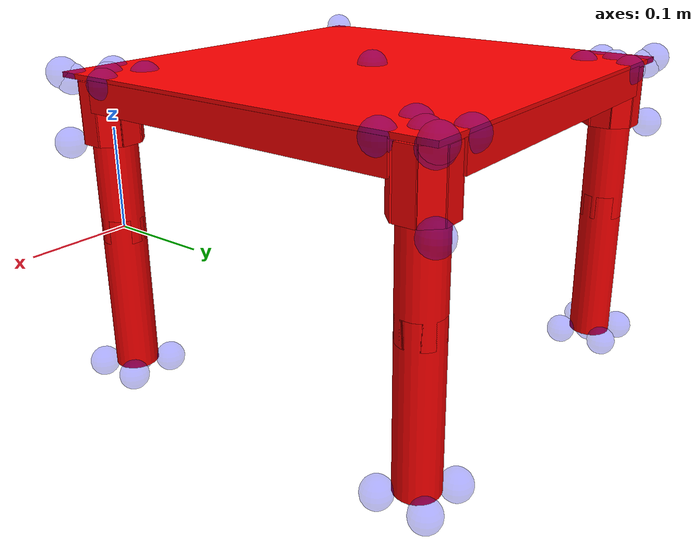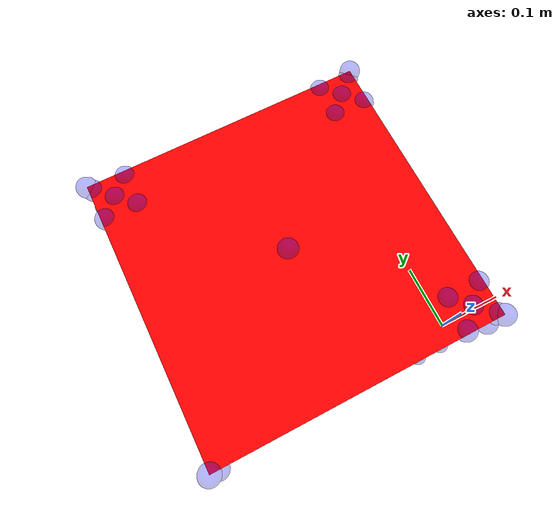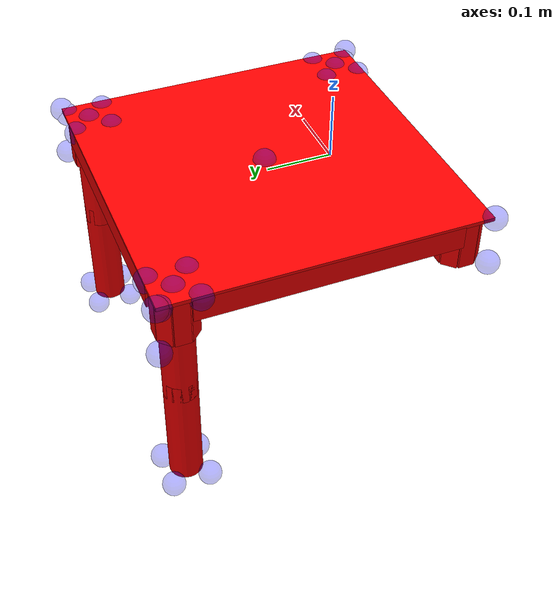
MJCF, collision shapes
<mujoco model="toy_table">
  <asset>
    <mesh file="../meshes/toy_table/0.stl" name="part0" scale="0.037025927036999993 0.037025927036999993 0.037025927036999993" />
    <mesh file="../meshes/toy_table/4.stl" name="part4" scale="0.037025927036999993 0.037025927036999993 0.037025927036999993" />
    <mesh file="../meshes/toy_table/3.stl" name="part3" scale="0.037025927036999993 0.037025927036999993 0.037025927036999993" />
    <mesh file="../meshes/toy_table/2.stl" name="part2" scale="0.037025927036999993 0.037025927036999993 0.037025927036999993" />
    <mesh file="../meshes/toy_table/1.stl" name="part1" scale="0.037025927036999993 0.037025927036999993 0.037025927036999993" />
  </asset>
  <equality>
  </equality>
  <worldbody>
    <body name="0_part0" pos="0.0 0.0 0.0" quat="1 0 0 0">
      <geom conaffinity="0" contype="0" density="0" mesh="part0" name="0_part0_mesh" pos="0.0 0.0 0.0" rgba="0.82 0.71 0.55 1" type="mesh" />
      <site name="0_part0_horizontal_radius_site" pos="0.0 0.0 0.0" quat="1 0 0 0" rgba="0 0 1 0.3" size="0.014810370814799998" />
      <site name="0_part0_top_site" pos="0.0 0.0 0.14797517264229104" quat="1 0 0 0" rgba="0 0 1 0.3" size="0.014810370814799998" />
      <site name="0_part0_bottom_site" pos="0.0 0.0 -0.14797517264229104" quat="1 0 0 0" rgba="0 0 1 0.3" size="0.014810370814799998" />
      <site name="0_part0_corner_site8" pos="-0.023476252011882807 0.023476252011882807 0.14797517264229104" quat="1 0 0 0" rgba="0 0 1 0.3" size="0.014810370814799998" />
      <site name="0_part0_corner_site7" pos="0.023476252011882807 0.023476252011882807 0.14797517264229104" quat="1 0 0 0" rgba="0 0 1 0.3" size="0.014810370814799998" />
      <site name="0_part0_corner_site6" pos="0.023476252011882807 -0.023476252011882807 0.14797517264229104" quat="1 0 0 0" rgba="0 0 1 0.3" size="0.014810370814799998" />
      <site name="0_part0_corner_site5" pos="-0.023476252011882807 -0.023476252011882807 0.14797517264229104" quat="1 0 0 0" rgba="0 0 1 0.3" size="0.014810370814799998" />
      <site name="0_part0_corner_site4" pos="-0.023476252011882807 0.023476252011882807 -0.14797517264229104" quat="1 0 0 0" rgba="0 0 1 0.3" size="0.014810370814799998" />
      <site name="0_part0_corner_site3" pos="0.023476252011882807 0.023476252011882807 -0.14797517264229104" quat="1 0 0 0" rgba="0 0 1 0.3" size="0.014810370814799998" />
      <site name="0_part0_corner_site2" pos="0.023476252011882807 -0.023476252011882807 -0.14797517264229104" quat="1 0 0 0" rgba="0 0 1 0.3" size="0.014810370814799998" />
      <site name="0_part0_corner_site1" pos="-0.023476252011882807 -0.023476252011882807 -0.14797517264229104" quat="1 0 0 0" rgba="0 0 1 0.3" size="0.014810370814799998" />
      <site name="leg-top,,conn_site3" pos="-0.00037025927036999994 0.0011107778111099998 0.12318525925209897" quat="0 0 1 0" rgba="0.9019 0.0980 0.2941 0.3" size="0.014810370814799998" />
      <geom density="50" name="noviz_collision_0_part0_0" pos="0 0 0.068" quat="1 0 0 0" rgba="1 0 0 1" size="0.021 0.08" solref="0.001 1" type="cylinder" />
      <geom density="50" name="noviz_collision_0_part0_1" pos="0 0 -0.068" quat="1 0 0 0" rgba="1 0 0 1" size="0.021 0.08" solref="0.001 1" type="cylinder" />
    </body>
    <body name="4_part4" pos="-0.17516966081204696 0.17516964229908347 0.12027505841291783" quat="1 0 0 0">
      <geom conaffinity="0" contype="0" density="50" mesh="part4" name="4_part4_mesh" pos="0.0 0.0 0.0" rgba="0.82 0.71 0.55 1" type="mesh" />
      <site name="4_part4_horizontal_radius_site" pos="0.0 0.0 0.0" quat="1 0 0 0" rgba="0 0 1 0.3" size="0.014810370814799998" />
      <site name="4_part4_top_site" pos="0.0 0.0 0.033272627326222826" quat="1 0 0 0" rgba="0 0 1 0.3" size="0.014810370814799998" />
      <site name="4_part4_bottom_site" pos="0.0 0.0 -0.033272627326222826" quat="1 0 0 0" rgba="0 0 1 0.3" size="0.014810370814799998" />
      <site name="4_part4_corner_site8" pos="-0.20396864901698777 0.2039686675299513 0.033272627326222826" quat="1 0 0 0" rgba="0 0 1 0.3" size="0.014810370814799998" />
      <site name="4_part4_corner_site7" pos="0.20396864901698777 0.2039686675299513 0.033272627326222826" quat="1 0 0 0" rgba="0 0 1 0.3" size="0.014810370814799998" />
      <site name="4_part4_corner_site6" pos="0.20396864901698777 -0.2039686675299513 0.033272627326222826" quat="1 0 0 0" rgba="0 0 1 0.3" size="0.014810370814799998" />
      <site name="4_part4_corner_site5" pos="-0.20396864901698777 -0.2039686675299513 0.033272627326222826" quat="1 0 0 0" rgba="0 0 1 0.3" size="0.014810370814799998" />
      <site name="4_part4_corner_site4" pos="-0.20396864901698777 0.2039686675299513 -0.033272627326222826" quat="1 0 0 0" rgba="0 0 1 0.3" size="0.014810370814799998" />
      <site name="4_part4_corner_site3" pos="0.20396864901698777 0.2039686675299513 -0.033272627326222826" quat="1 0 0 0" rgba="0 0 1 0.3" size="0.014810370814799998" />
      <site name="4_part4_corner_site2" pos="0.20396864901698777 -0.2039686675299513 -0.033272627326222826" quat="1 0 0 0" rgba="0 0 1 0.3" size="0.014810370814799998" />
      <site name="4_part4_corner_site1" pos="-0.20396864901698777 -0.2039686675299513 -0.033272627326222826" quat="1 0 0 0" rgba="0 0 1 0.3" size="0.014810370814799998" />
      <site name="top-leg,,conn_site4" pos="0.17461427190649198 0.17461427190649198 0.0029102378651081995" quat="0 0 1 0" rgba="0.9019 0.0980 0.2941 0.3" size="0.014804445407399999" />
      <site name="top-leg,,conn_site3" pos="0.174799401541677 -0.17405888300093694 0.0029102378651081995" quat="0 0 1 0" rgba="0.9019 0.0980 0.2941 0.3" size="0.014810370814799995" />
      <site name="top-leg,,conn_site2" pos="-0.175836127498713 -0.174799401541677 0.0029102378651081995" quat="0 0 1 0" rgba="0.9019 0.0980 0.2941 0.3" size="0.014810370814799995" />
      <site name="top-leg,,conn_site1" pos="-0.17546586822834298 0.17546586822834298 0.0029102378651081995" quat="0 0 1 0" rgba="0.9019 0.0980 0.2941 0.3" size="0.014810370814799995" />
      <geom density="50" quat="1 0 0 0" name="noviz_collision_4_part4_0" pos="-0.17453 0.15043 -0.00268" rgba="1 0 0 1" size="0.01 0.0015 0.03" solref="0.001 1" type="box" />
      <geom density="50" quat="1 0 0 0" name="noviz_collision_4_part4_1" pos="-0.17453 0.19991 -0.00268" rgba="1 0 0 1" size="0.01 0.0015 0.03" solref="0.001 1" type="box" />
      <geom density="50" quat="0.9238796 0 0 -0.3826834" name="noviz_collision_4_part4_2" pos="-0.19243 0.15743 -0.00268" rgba="1 0 0 1" size="0.01 0.0015 0.03" solref="0.001 1" type="box" />
      <geom density="50" quat="0.7071067 0 0 -0.7071068" name="noviz_collision_4_part4_3" pos="-0.15036 0.17523 -0.00268" rgba="1 0 0 1" size="0.01 0.0015 0.03" solref="0.001 1" type="box" />
      <geom density="50" quat="0.7071067 0 0 -0.7071068" name="noviz_collision_4_part4_4" pos="-0.19998 0.17523 -0.00268" rgba="1 0 0 1" size="0.01 0.0015 0.03" solref="0.001 1" type="box" />
      <geom density="50" quat="0.9238796 0 0 -0.3826834" name="noviz_collision_4_part4_5" pos="-0.15743 0.19243 -0.00268" rgba="1 0 0 1" size="0.01 0.0015 0.03" solref="0.001 1" type="box" />
      <geom density="50" quat="0.9238796 0 0 0.3826834" name="noviz_collision_4_part4_6" pos="-0.19244 0.193 -0.00268" rgba="1 0 0 1" size="0.01 0.0015 0.03" solref="0.001 1" type="box" />
      <geom density="50" quat="0.9238796 0 0 0.3826834" name="noviz_collision_4_part4_7" pos="-0.15693 0.15753 -0.00268" rgba="1 0 0 1" size="0.01 0.0015 0.03" solref="0.001 1" type="box" />
      <geom density="50" quat="1 0 0 0" name="noviz_collision_4_part4_8" pos="0.17577 0.15043 -0.00268" rgba="1 0 0 1" size="0.01 0.0015 0.03" solref="0.001 1" type="box" />
      <geom density="50" quat="1 0 0 0" name="noviz_collision_4_part4_9" pos="0.17577 0.19991 -0.00268" rgba="1 0 0 1" size="0.01 0.0015 0.03" solref="0.001 1" type="box" />
      <geom density="50" quat="0.9238796 0 0 -0.3826834" name="noviz_collision_4_part4_10" pos="0.1579 0.15743 -0.00268" rgba="1 0 0 1" size="0.01 0.0015 0.03" solref="0.001 1" type="box" />
      <geom density="50" quat="0.7071067 0 0 -0.7071068" name="noviz_collision_4_part4_11" pos="0.19994 0.17523 -0.00268" rgba="1 0 0 1" size="0.01 0.0015 0.03" solref="0.001 1" type="box" />
      <geom density="50" quat="0.7071067 0 0 -0.7071068" name="noviz_collision_4_part4_12" pos="0.1503 0.17523 -0.00268" rgba="1 0 0 1" size="0.01 0.0015 0.03" solref="0.001 1" type="box" />
      <geom density="50" quat="0.9238796 0 0 -0.3826834" name="noviz_collision_4_part4_13" pos="0.19287 0.19243 -0.00268" rgba="1 0 0 1" size="0.01 0.0015 0.03" solref="0.001 1" type="box" />
      <geom density="50" quat="0.9238796 0 0 0.3826834" name="noviz_collision_4_part4_14" pos="0.15786 0.193 -0.00268" rgba="1 0 0 1" size="0.01 0.0015 0.03" solref="0.001 1" type="box" />
      <geom density="50" quat="0.9238796 0 0 0.3826834" name="noviz_collision_4_part4_15" pos="0.1934 0.15753 -0.00268" rgba="1 0 0 1" size="0.01 0.0015 0.03" solref="0.001 1" type="box" />
      <geom density="50" quat="1 0 0 0" name="noviz_collision_4_part4_16" pos="0.17577 -0.1999 -0.00268" rgba="1 0 0 1" size="0.01 0.0015 0.03" solref="0.001 1" type="box" />
      <geom density="50" quat="1 0 0 0" name="noviz_collision_4_part4_17" pos="0.17577 -0.1504 -0.00268" rgba="1 0 0 1" size="0.01 0.0015 0.03" solref="0.001 1" type="box" />

      <geom density="50" quat="0.7071067 0 0 -0.7071068" name="noviz_collision_4_part4_18" pos="0.19997 -0.17517 -0.00268" rgba="1 0 0 1" size="0.01 0.0015 0.03" solref="0.001 1" type="box" />
      <geom density="50" quat="0.7071067 0 0 -0.7071068" name="noviz_collision_4_part4_19" pos="0.1503 -0.17517 -0.00268" rgba="1 0 0 1" size="0.01 0.0015 0.03" solref="0.001 1" type="box" />
      <geom density="50" quat="0.9238796 0 0 0.3826834" name="noviz_collision_4_part4_20" pos="0.19327 -0.19207 -0.00268" rgba="1 0 0 1" size="0.01 0.0015 0.03" solref="0.001 1" type="box" />
      <geom density="50" quat="0.9238796 0 0 -0.3826834" name="noviz_collision_4_part4_21" pos="0.19268 -0.15758 -0.00268" rgba="1 0 0 1" size="0.01 0.0015 0.03" solref="0.001 1" type="box" />
      <geom density="50" quat="0.9238796 0 0 -0.3826834" name="noviz_collision_4_part4_22" pos="0.15759 -0.19265 -0.00268" rgba="1 0 0 1" size="0.01 0.0015 0.03" solref="0.001 1" type="box" />
      <geom density="50" quat="0.9238796 0 0 0.3826834" name="noviz_collision_4_part4_23" pos="0.15796 -0.15734 -0.00268" rgba="1 0 0 1" size="0.01 0.0015 0.03" solref="0.001 1" type="box" />
      <geom density="50" quat="0.9238796 0 0 0.3826834" name="noviz_collision_4_part4_24" pos="-0.19254 -0.15756 -0.00268" rgba="1 0 0 1" size="0.01 0.0015 0.03" solref="0.001 1" type="box" />
      <geom density="50" quat="1 0 0 0" name="noviz_collision_4_part4_25" pos="-0.17453 -0.15051 -0.00268" rgba="1 0 0 1" size="0.01 0.0015 0.03" solref="0.001 1" type="box" />
      <geom density="50" quat="1 0 0 0" name="noviz_collision_4_part4_26" pos="-0.17453 -0.19997 -0.00268" rgba="1 0 0 1" size="0.01 0.0015 0.03" solref="0.001 1" type="box" />
      <geom density="50" quat="0.7071067 0 0 -0.7071068" name="noviz_collision_4_part4_27" pos="-0.15043 -0.17567 -0.00268" rgba="1 0 0 1" size="0.01 0.0015 0.03" solref="0.001 1" type="box" />
      <geom density="50" quat="0.7071067 0 0 -0.7071068" name="noviz_collision_4_part4_28" pos="-0.19995 -0.17567 -0.00268" rgba="1 0 0 1" size="0.01 0.0015 0.03" solref="0.001 1" type="box" />
      <geom density="50" quat="0.9238796 0 0 0.3826834" name="noviz_collision_4_part4_29" pos="-0.15757 -0.19253 -0.00268" rgba="1 0 0 1" size="0.01 0.0015 0.03" solref="0.001 1" type="box" />
      <geom density="50" quat="0.9238796 0 0 -0.3826834" name="noviz_collision_4_part4_30" pos="-0.19244 -0.19298 -0.00268" rgba="1 0 0 1" size="0.01 0.0015 0.03" solref="0.001 1" type="box" />
      <geom density="50" quat="0.9238796 0 0 -0.3826834" name="noviz_collision_4_part4_31" pos="-0.15745 -0.15799 -0.00268" rgba="1 0 0 1" size="0.01 0.0015 0.03" solref="0.001 1" type="box" />
      <geom density="50" quat="1 0 0 0" name="noviz_collision_4_part4_32" pos="0 0 0.03172" rgba="1 0 0 1" size="0.20397 0.20397 0.0025" solref="0.001 1" type="box" />
      <geom density="50" quat="1 0 0 0" name="noviz_collision_4_part4_33" pos="0.00137 -0.20257 0.01562" rgba="1 0 0 1" size="0.165 0.0015 0.015" solref="0.001 1" type="box" />
      <geom density="50" quat="1 0 0 0" name="noviz_collision_4_part4_34" pos="0.00137 0.20254 0.01562" rgba="1 0 0 1" size="0.165 0.0015 0.015" solref="0.001 1" type="box" />
      <geom density="50" quat="0.7071067 0 0 -0.7071068" name="noviz_collision_4_part4_35" pos="0.20267 -0.00187 0.01562" rgba="1 0 0 1" size="0.165 0.0015 0.015" solref="0.001 1" type="box" />
      <geom density="50" quat="0.7071067 0 0 -0.7071068" name="noviz_collision_4_part4_36" pos="-0.20263 -0.00187 0.01562" rgba="1 0 0 1" size="0.165 0.0015 0.015" solref="0.001 1" type="box" />
    </body>
    <body name="2_part2" pos="0.0 0.3503393216240939 -0.0" quat="1 0 0 0">
      <geom conaffinity="0" contype="0" density="01" mesh="part2" name="2_part2_mesh" pos="0.0 0.0 0.0" rgba="0.82 0.71 0.55 1" type="mesh" />
      <site name="2_part2_horizontal_radius_site" pos="0.0 0.0 0.0" quat="1 0 0 0" rgba="0 0 1 0.3" size="0.014810370814799998" />
      <site name="2_part2_top_site" pos="0.0 0.0 0.14797517264229104" quat="1 0 0 0" rgba="0 0 1 0.3" size="0.014810370814799998" />
      <site name="2_part2_bottom_site" pos="0.0 0.0 -0.14797517264229104" quat="1 0 0 0" rgba="0 0 1 0.3" size="0.014810370814799998" />
      <site name="2_part2_corner_site8" pos="-0.023476252011882807 0.023476252011882807 0.14797517264229104" quat="1 0 0 0" rgba="0 0 1 0.3" size="0.014810370814799998" />
      <site name="2_part2_corner_site7" pos="0.023476252011882807 0.023476252011882807 0.14797517264229104" quat="1 0 0 0" rgba="0 0 1 0.3" size="0.014810370814799998" />
      <site name="2_part2_corner_site6" pos="0.023476252011882807 -0.023476252011882807 0.14797517264229104" quat="1 0 0 0" rgba="0 0 1 0.3" size="0.014810370814799998" />
      <site name="2_part2_corner_site5" pos="-0.023476252011882807 -0.023476252011882807 0.14797517264229104" quat="1 0 0 0" rgba="0 0 1 0.3" size="0.014810370814799998" />
      <site name="2_part2_corner_site4" pos="-0.023476252011882807 0.023476252011882807 -0.14797517264229104" quat="1 0 0 0" rgba="0 0 1 0.3" size="0.014810370814799998" />
      <site name="2_part2_corner_site3" pos="0.023476252011882807 0.023476252011882807 -0.14797517264229104" quat="1 0 0 0" rgba="0 0 1 0.3" size="0.014810370814799998" />
      <site name="2_part2_corner_site2" pos="0.023476252011882807 -0.023476252011882807 -0.14797517264229104" quat="1 0 0 0" rgba="0 0 1 0.3" size="0.014810370814799998" />
      <site name="2_part2_corner_site1" pos="-0.023476252011882807 -0.023476252011882807 -0.14797517264229104" quat="1 0 0 0" rgba="0 0 1 0.3" size="0.014810370814799998" />
      <site name="leg-top,,conn_site4" pos="-0.0005553889055549999 -0.0005553889055549999 0.12318525925209897" quat="0 0 1 0" rgba="0.9019 0.0980 0.2941 0.3" size="0.014810370814799995" />
      <geom density="50" name="noviz_collision_2_part2_0" pos="0 0 0.068" quat="1 0 0 0" rgba="1 0 0 1" size="0.021 0.08" solref="0.001 1" type="cylinder" />
      <geom density="50" name="noviz_collision_2_part2_1" pos="0 0 -0.068" quat="1 0 0 0" rgba="1 0 0 1" size="0.021 0.08" solref="0.001 1" type="cylinder" />
    </body>
    <body name="1_part1" pos="-0.3503393216240939 0.3503393216240939 -0.0" quat="1 0 0 0">
      <geom conaffinity="0" contype="0" density="01" mesh="part1" name="1_part1_mesh" pos="0.0 0.0 0.0" rgba="0.82 0.71 0.55 1" type="mesh" />
      <site name="1_part1_horizontal_radius_site" pos="0.0 0.0 0.0" quat="1 0 0 0" rgba="0 0 1 0.3" size="0.014810370814799998" />
      <site name="1_part1_top_site" pos="0.0 0.0 0.14797517264229104" quat="1 0 0 0" rgba="0 0 1 0.3" size="0.014810370814799998" />
      <site name="1_part1_bottom_site" pos="0.0 0.0 -0.14797517264229104" quat="1 0 0 0" rgba="0 0 1 0.3" size="0.014810370814799998" />
      <site name="1_part1_corner_site8" pos="-0.023476252011882807 0.023476252011882807 0.14797517264229104" quat="1 0 0 0" rgba="0 0 1 0.3" size="0.014810370814799998" />
      <site name="1_part1_corner_site7" pos="0.023476252011882807 0.023476252011882807 0.14797517264229104" quat="1 0 0 0" rgba="0 0 1 0.3" size="0.014810370814799998" />
      <site name="1_part1_corner_site6" pos="0.023476252011882807 -0.023476252011882807 0.14797517264229104" quat="1 0 0 0" rgba="0 0 1 0.3" size="0.014810370814799998" />
      <site name="1_part1_corner_site5" pos="-0.023476252011882807 -0.023476252011882807 0.14797517264229104" quat="1 0 0 0" rgba="0 0 1 0.3" size="0.014810370814799998" />
      <site name="1_part1_corner_site4" pos="-0.023476252011882807 0.023476252011882807 -0.14797517264229104" quat="1 0 0 0" rgba="0 0 1 0.3" size="0.014810370814799998" />
      <site name="1_part1_corner_site3" pos="0.023476252011882807 0.023476252011882807 -0.14797517264229104" quat="1 0 0 0" rgba="0 0 1 0.3" size="0.014810370814799998" />
      <site name="1_part1_corner_site2" pos="0.023476252011882807 -0.023476252011882807 -0.14797517264229104" quat="1 0 0 0" rgba="0 0 1 0.3" size="0.014810370814799998" />
      <site name="1_part1_corner_site1" pos="-0.023476252011882807 -0.023476252011882807 -0.14797517264229104" quat="1 0 0 0" rgba="0 0 1 0.3" size="0.014810370814799998" />
      <site name="leg-top,,conn_site1" pos="-0.00029620741629599994 0.00029620741629599994 0.12318525925209897" quat="0 0 1 0" rgba="0.9019 0.0980 0.2941 0.3" size="0.014810370814799995" />
      <geom density="50" name="noviz_collision_1_part1_0" pos="0 0 0.068" quat="1 0 0 0" rgba="1 0 0 1" size="0.021 0.08" solref="0.001 1" type="cylinder" />
      <geom density="50" name="noviz_collision_1_part1_1" pos="0 0 -0.068" quat="1 0 0 0" rgba="1 0 0 1" size="0.021 0.08" solref="0.001 1" type="cylinder" />
    </body>
  </worldbody>
</mujoco>
